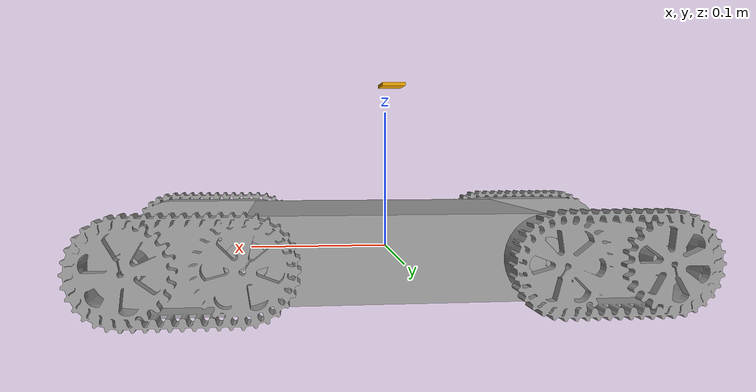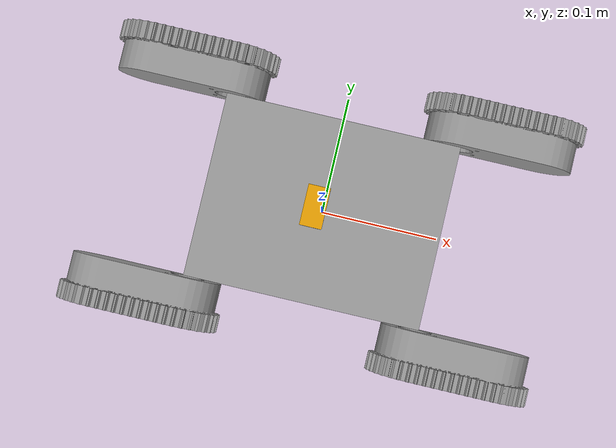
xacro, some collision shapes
<?xml version="1.0" encoding="utf-8"?>
<robot xmlns:xacro="http://www.ros.org/wiki/xacro" name="mmtr">
	<plugin name="gazebo_ros_paths" filename="libgazebo_ros_paths_plugin.so" />

	<xacro:property name="mesh_dir" value="file://$(find mmtr_description)/meshes/" />
	<xacro:include filename="mmtr_gazebo.xacro" />
	<xacro:include filename="inertial_macros.xacro" />

	<!-- ********** MACROS ********** -->
	<xacro:property name="mass" value="1.5" />
	<xacro:property name="flipper_mass" value="0.375" />
	<xacro:property name="flipper_length" value="0.12932" />
	<xacro:property name="flipper_width" value="0.041" />

	<xacro:property name="flipper_radius" value="0.06958" />

	<!-- ********** MACROS ********** -->

	<!-- ********** BASE FOOTPRINT ********** -->
	<link name="base_footprint" />

	<joint name="chassis_joint" type="fixed">
		<parent link="base_footprint" />
		<child link="base_link" />
		<origin xyz="0.0 0.0 0.0" rpy="0.0 0.0 0.0" />
	</joint>
	<!-- ********** BASE FOOTPRINT ********** -->

	<!-- ********** BASE LINK ********** -->
	<link name="base_link">
		<inertial>
			<origin xyz="-4.4639E-06 -1.1907E-06 -0.0036869" rpy="0 0 0" />
			<mass value="3.0" />
			<inertia
				ixx="0.0055239"
				ixy="9.7788E-07"
				ixz="1.5028E-07"
				iyy="0.0215439"
				iyz="2.2009E-07"
				izz="0.0251589" />
		</inertial>

		<visual>
			<origin xyz="0 0 0" rpy="0 0 0" />
			<geometry>
				<mesh filename="${mesh_dir}base_link.STL" />
			</geometry>
		</visual>

		<collision name="box">
			<origin xyz="0 0 0" rpy="0 0 0" />
			<geometry>
				<box size="0.2 0.156 0.05932" />
			</geometry>
		</collision>

		<collision name="rear_curved">
			<origin xyz="-0.1 0 0" rpy="1.57 0 0" />
			<geometry>
				<cylinder radius="0.02966" length="0.156" />
			</geometry>
		</collision>

		<collision name="front_curved">
			<origin xyz="0.1 0 0" rpy="1.57 0 0" />
			<geometry>
				<cylinder radius="0.02966" length="0.156" />
			</geometry>
		</collision>
	</link>
	<!-- ********** CHASSIS LINK ********** -->

	<!-- ********** LEFT FLIPPER LINK ********** -->

	<link name="front_flipper_left">
		<inertial>
			<origin xyz="0.039257 -0.01033 -0.00014149" rpy="0 0 0" />
			<mass value="2.0" />
			<inertia
				ixx="0.0008184"
				ixy="-4.6196E-05"
				ixz="4.2342E-07"
				iyy="0.0029431"
				iyz="3.2476E-07"
				izz="0.00228085" />
		</inertial>

		<visual>
			<origin xyz="0 0 0" rpy="0 0 0" />
			<geometry>
				<mesh
					filename="${mesh_dir}front_flipper_left.STL" />
			</geometry>
		</visual>

		<collision name='flipper'>
			<origin xyz="-0.0 -0.012 0" rpy="1.57 0 0" />
			<geometry>
				<cylinder radius="0.0348" length="0.041" />
			</geometry>
		</collision>

		<collision name='left_wheel_2_link'>
			<origin xyz="0.07 -0.012 0" rpy="1.57 0 0" />
			<geometry>
				<cylinder radius="0.0348" length="0.041" />
			</geometry>
		</collision>

		<collision name='left_box_1_link'>
			<origin xyz="0.035 -0.012 0" rpy="0 0 0" />
			<geometry>
				<box size="0.07 0.041 0.0696" />
			</geometry>
		</collision>
	</link>

	<joint name="front_left_flipper_joint" type="revolute">
		<origin xyz="0.099914 0.1132 0.00012834" rpy="0 0 0" />
		<parent link="base_link" />
		<child link="front_flipper_left" />
		<axis xyz="0 1 0" />
		<limit lower="-4" upper="4" effort="60.96" velocity="1.0" />
	</joint>

	<!-- ********** LEFT FLIPPER LINK ********** -->

	<!-- ********** RIGHT FLIPPER LINK ********** -->
	<link name="front_flipper_right">
		<inertial>
			<origin xyz="0.039266 0.01033 0.00013504" rpy="0 0 0" />
			<mass value="2.0" />
			<inertia
				ixx="0.0008184"
				ixy="0.000046196"
				ixz="-0.00000042342"
				iyy="0.0029431"
				iyz="0.00000032476"
				izz="0.00228085" />
		</inertial>

		<visual>
			<origin xyz="0 0 0" rpy="0 0 0" />
			<geometry>
				<mesh filename="${mesh_dir}front_flipper_right.STL" />
			</geometry>
		</visual>

		<collision name='right_wheel_1_link'>
			<origin xyz="-0.0 0.012 0" rpy="1.57 0 0" />
			<geometry>
				<cylinder radius="0.0348" length="0.041" />
			</geometry>
		</collision>

		<collision name='right_wheel_2_link'>
			<origin xyz="0.07 0.012 0" rpy="1.57 0 0" />
			<geometry>
				<cylinder radius="0.0348" length="0.041" />
			</geometry>
		</collision>

		<collision name='right_box_1_link'>
			<origin xyz="0.035 0.012 0" rpy="0 0 0" />
			<geometry>
				<box size="0.07 0.041 0.0696" />
			</geometry>
		</collision>
	</link>

	<joint name="front_right_flipper_joint" type="revolute">
		<origin xyz="0.099905 -0.1132 -0.00012189" rpy="0 0 0" />
		<parent link="base_link" />
		<child link="front_flipper_right" />
		<axis xyz="0 1 0" />
		<limit lower="-4" upper="4" effort="60.96" velocity="1.0" />
	</joint>
	<!-- ********** RIGHT FLIPPER LINK ********** -->

	<!-- ********** REAR RIGHT FLIPPER LINK ********** -->
	<link name="rear_flipper_right">
		<inertial>
			<origin xyz="-0.039256 0.01033 -0.0001417" rpy="0 0 0" />
			<mass value="2.0" />
			<inertia
				ixx="0.0008184"
				ixy="0.000046196"
				ixz="-0.00000042342"
				iyy="0.0029431"
				iyz="0.00000032476"
				izz="0.00228085" />
		</inertial>

		<visual>
			<origin xyz="0 0 0" rpy="0 0 0" />
			<geometry>
				<mesh filename="${mesh_dir}rear_flipper_right.STL" />
			</geometry>
		</visual>

		<collision name='rear_right_wheel_1_link'>
			<origin xyz="-0.0 0.012 0" rpy="1.57 0 0" />
			<geometry>
				<cylinder radius="0.0348" length="0.041" />
			</geometry>
		</collision>

		<collision name='rear_right_wheel_2_link'>
			<origin xyz="-0.07 0.012 0" rpy="1.57 0 0" />
			<geometry>
				<cylinder radius="0.0348" length="0.041" />
			</geometry>
		</collision>

		<collision name='rear_right_box_1_link'>
			<origin xyz="-0.035 0.012 0" rpy="0 0 0" />
			<geometry>
				<box size="0.07 0.041 0.0696" />
			</geometry>
		</collision>
	</link>

	<joint name="rear_right_flipper_joint" type="revolute">
		<origin xyz="-0.099914 -0.1132 0.00012856" rpy="0 0 0" />
		<parent link="base_link" />
		<child link="rear_flipper_right" />
		<axis xyz="0 1 0" />
		<limit lower="-4" upper="4" effort="60.96" velocity="1.0" />
	</joint>
	<!-- ********** REAR RIGHT FLIPPER LINK ********** -->

	<!-- ********** REAR LEFT FLIPPER LINK ********** -->
	<link name="rear_flipper_left">
		<inertial>
			<origin xyz="-0.039262 -0.01033 0.00013791" rpy="0 0 0" />
			<mass value="2.0" />
			<inertia
				ixx="0.0008184"
				ixy="0.000046196"
				ixz="-0.00000042342"
				iyy="0.0029431"
				iyz="0.00000032476"
				izz="0.00228085" />
		</inertial>

		<visual>
			<origin xyz="0 0 0" rpy="0 0 0" />
			<geometry>
				<mesh filename="${mesh_dir}rear_flipper_left.STL" />
			</geometry>
		</visual>

		<collision name='rear_left_wheel_1_link'>
			<origin xyz="-0.0 -0.012 0" rpy="1.57 0 0" />
			<geometry>
				<cylinder radius="0.0348" length="0.041" />
			</geometry>
		</collision>

		<collision name='rear_left_wheel_2_link'>
			<origin xyz="-0.07 -0.012 0" rpy="1.57 0 0" />
			<geometry>
				<cylinder radius="0.0348" length="0.041" />
			</geometry>
		</collision>

		<collision name='rear_left_box_1_link'>
			<origin xyz="-0.035 -0.012 0" rpy="0 0 0" />
			<geometry>
				<box size="0.07 0.041 0.0696" />
			</geometry>
		</collision>
	</link>

	<joint name="rear_left_flipper_joint" type="revolute">
		<origin xyz="-0.099909 0.1132 -0.00012477" rpy="0 0 0" />
		<parent link="base_link" />
		<child link="rear_flipper_left" />
		<axis xyz="0 1 0" />
		<limit lower="-4" upper="4" effort="60.96" velocity="1.0" />
	</joint>
	<!-- ********** REAR LEFT FLIPPER LINK ********** -->

	<!-- ********** IMU LINK ********** -->
	<link name="imu_link">

		<inertial>
			<origin xyz="-0.0 0.0 0.0" rpy="0 0 0" />
			<mass value="0.05" />
			<inertia
				ixx="4.06e-06" ixy="0.0" ixz="0.0"
				iyy="1.21e-06" iyz="0.0"
				izz="5.21e-06" />
		</inertial>

		<visual>
			<origin xyz="0 0 0" rpy="0 0 0" />
			<geometry>
				<box size="0.01684 0.03111 0.00254" />
			</geometry>
		</visual>

		<collision>
			<origin xyz="0 0 0" rpy="0 0 0" />
			<geometry>
				<box size="0.01684 0.03111 0.00254" />
			</geometry>
		</collision>

	</link>

	<joint name="imu_joint" type="fixed">
		<parent link="base_link" />
		<child link="imu_link" />
		<origin xyz="0.0 0.0 0.015" rpy="0.0 0.0 0.0" />
		<axis xyz="0 0 0" />
	</joint>

	<!-- ********** Magnetometer LINK ********** -->
	<link name="mag_link">

		<inertial>
			<origin xyz="-0.0 0.0 0.0" rpy="0 0 0" />
			<mass value="0.05" />
			<inertia
				ixx="4.06e-06" ixy="0.0" ixz="0.0"
				iyy="1.21e-06" iyz="0.0"
				izz="5.21e-06" />
		</inertial>

		<visual>
			<origin xyz="0 0 0" rpy="0 0 0" />
			<geometry>
				<box size="0.01684 0.03111 0.00254" />
			</geometry>
		</visual>

		<collision>
			<origin xyz="0 0 0" rpy="0 0 0" />
			<geometry>
				<box size="0.01684 0.03111 0.00254" />
			</geometry>
		</collision>

	</link>

	<joint name="mag_joint" type="fixed">
		<parent link="base_link" />
		<child link="mag_link" />
		<origin xyz="0.0 0.0 0.015" rpy="0.0 0.0 0.0" />
		<axis xyz="0 0 0" />
	</joint>

	<link name="laser_link">
		<inertial>
			<origin xyz="-0.011945780406062 -0.000381929217680526 -0.0170649378129477" rpy="0 0 0" />
			<mass value="0.073084435549317" />
			<inertia ixx="1.96074931730795E-05" ixy="-3.62091076640009E-07"
				ixz="4.28230084046735E-07"
				iyy="2.40983835136327E-05" iyz="1.50180909250652E-08"
				izz="4.14184164228595E-05" />
		</inertial>
		<visual>
			<origin xyz="0 0 0" rpy="0 0 0" />
			<geometry>
				<box size="0.01684 0.03111 0.00254" />

			</geometry>
		</visual>
	</link>
	<joint name="laser_joint" type="fixed">
		<origin xyz="-0.0050526 -0.0023221 0.1208" rpy="0 0 3.14" />
		<parent link="base_link" />
		<child link="laser_link" />
		<axis xyz="0 0 0" />
	</joint>

	<!-- Transmission for ros2_control -->

	<!-- ros2_control configuration -->

	<ros2_control name="GazeboSystem" type="system">
		<hardware>
			<plugin>gz_ros2_control/GazeboSimSystem</plugin>
		</hardware>

		<joint name="front_left_flipper_joint">
			<command_interface name="position">
				<param name="min">-3.0</param>
				<param name="max">3.0</param>
			</command_interface>
			<state_interface name="position" />
		</joint>

		<joint name="front_right_flipper_joint">
			<command_interface name="position">
				<param name="min">-3.0</param>
				<param name="max">3.0</param>
			</command_interface>
			<state_interface name="position" />
		</joint>

		<joint name="rear_left_flipper_joint">
			<command_interface name="position">
				<param name="min">-3.0</param>
				<param name="max">3.0</param>
			</command_interface>
			<state_interface name="position" />
		</joint>

		<joint name="rear_right_flipper_joint">
			<command_interface name="position">
				<param name="min">-3.0</param>
				<param name="max">3.0</param>
			</command_interface>
			<state_interface name="position" />
		</joint>
	</ros2_control>

</robot>
